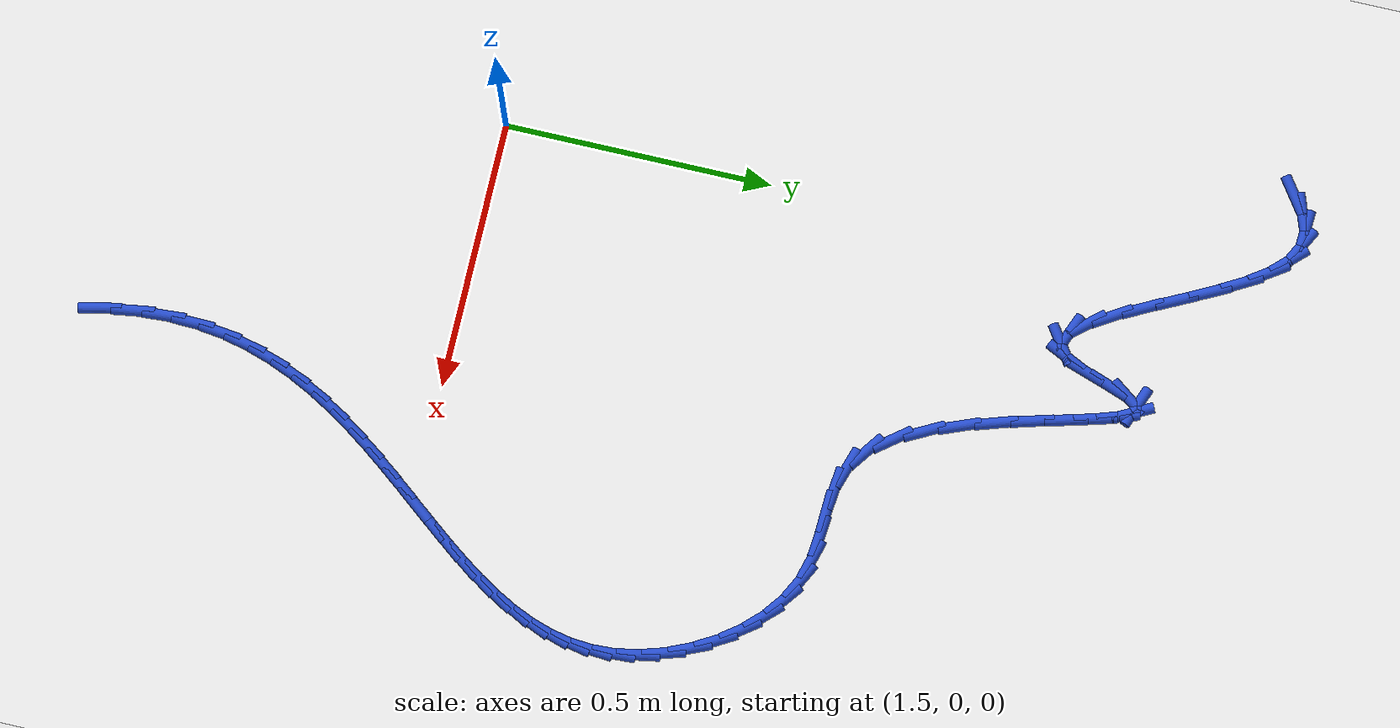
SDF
<sdf version="1.6">
 <world name="default">
  <model name="ground_plane">
   <static>1</static>
   <link name="link">
    <collision name="collision">
     <geometry><plane><normal>0 0 1</normal><size>100 100</size></plane></geometry>
     <surface><friction><ode><mu>100</mu><mu2>50</mu2></ode></friction></surface>
    </collision>
    <visual name="visual">
     <cast_shadows>0</cast_shadows>
     <geometry><plane><normal>0 0 1</normal><size>100 100</size></plane></geometry>
     <material>
      <script><uri>file://media/materials/scripts/gazebo.material</uri><name>Gazebo/WhiteGlow</name></script>
     </material>
    </visual>
   </link>
  </model>
  <model name="line">
   <link name="link_49">
    <pose>1.305960254640328 1.4397032660297522 0.01 0 1.57 0.6118114277231279</pose>
    <collision name="collision">
     <geometry><cylinder><radius>0.01</radius><length>0.08</length></cylinder></geometry>
    </collision>
    <visual name="visual">
     <material>
      <script><name>Gazebo/Blue</name><uri>file://media/materials/scripts/gazebo.material</uri></script>
     </material>
     <geometry><cylinder><radius>0.01</radius><length>0.08</length></cylinder></geometry>
    </visual>
   </link>
   <link name="link_50">
    <pose>1.3366207606281537 1.4612152464219388 0.01 0 1.57 0.3391835222651856</pose>
    <collision name="collision">
     <geometry><cylinder><radius>0.01</radius><length>0.08</length></cylinder></geometry>
    </collision>
    <visual name="visual">
     <material>
      <script><name>Gazebo/Blue</name><uri>file://media/materials/scripts/gazebo.material</uri></script>
     </material>
     <geometry><cylinder><radius>0.01</radius><length>0.08</length></cylinder></geometry>
    </visual>
   </link>
   <link name="link_51">
    <pose>1.3670169487333024 1.4719395839047713 0.01 0 1.57 -0.05838418707897125</pose>
    <collision name="collision">
     <geometry><cylinder><radius>0.01</radius><length>0.08</length></cylinder></geometry>
    </collision>
    <visual name="visual">
     <material>
      <script><name>Gazebo/Blue</name><uri>file://media/materials/scripts/gazebo.material</uri></script>
     </material>
     <geometry><cylinder><radius>0.01</radius><length>0.08</length></cylinder></geometry>
    </visual>
   </link>
   <link name="link_52">
    <pose>1.397233074291337 1.470173432753568 0.01 0 1.57 -0.4872475545735973</pose>
    <collision name="collision">
     <geometry><cylinder><radius>0.01</radius><length>0.08</length></cylinder></geometry>
    </collision>
    <visual name="visual">
     <material>
      <script><name>Gazebo/Blue</name><uri>file://media/materials/scripts/gazebo.material</uri></script>
     </material>
     <geometry><cylinder><radius>0.01</radius><length>0.08</length></cylinder></geometry>
    </visual>
   </link>
   <link name="link_53">
    <pose>1.4273533926378228 1.4542139472436493 0.01 0 1.57 -0.8073012380683111</pose>
    <collision name="collision">
     <geometry><cylinder><radius>0.01</radius><length>0.08</length></cylinder></geometry>
    </collision>
    <visual name="visual">
     <material>
      <script><name>Gazebo/Blue</name><uri>file://media/materials/scripts/gazebo.material</uri></script>
     </material>
     <geometry><cylinder><radius>0.01</radius><length>0.08</length></cylinder></geometry>
    </visual>
   </link>
   <link name="link_54">
    <pose>1.4574407283180275 1.4227788659387977 0.01 0 1.57 -0.9779283759990263</pose>
    <collision name="collision">
     <geometry><cylinder><radius>0.01</radius><length>0.08</length></cylinder></geometry>
    </collision>
    <visual name="visual">
     <material>
      <script><name>Gazebo/Blue</name><uri>file://media/materials/scripts/gazebo.material</uri></script>
     </material>
     <geometry><cylinder><radius>0.01</radius><length>0.08</length></cylinder></geometry>
    </visual>
   </link>
   <link name="link_55">
    <pose>1.487365526032299 1.3783614270027067 0.01 0 1.57 -1.0617486226155675</pose>
    <collision name="collision">
     <geometry><cylinder><radius>0.01</radius><length>0.08</length></cylinder></geometry>
    </collision>
    <visual name="visual">
     <material>
      <script><name>Gazebo/Blue</name><uri>file://media/materials/scripts/gazebo.material</uri></script>
     </material>
     <geometry><cylinder><radius>0.01</radius><length>0.08</length></cylinder></geometry>
    </visual>
   </link>
   <link name="link_56">
    <pose>1.5168966385264455 1.3254486345462557 0.01 0 1.57 -1.1007890962793665</pose>
    <collision name="collision">
     <geometry><cylinder><radius>0.01</radius><length>0.08</length></cylinder></geometry>
    </collision>
    <visual name="visual">
     <material>
      <script><name>Gazebo/Blue</name><uri>file://media/materials/scripts/gazebo.material</uri></script>
     </material>
     <geometry><cylinder><radius>0.01</radius><length>0.08</length></cylinder></geometry>
    </visual>
   </link>
   <link name="link_57">
    <pose>1.5458020002137172 1.2685455151722245 0.01 0 1.57 -1.1092316573219194</pose>
    <collision name="collision">
     <geometry><cylinder><radius>0.01</radius><length>0.08</length></cylinder></geometry>
    </collision>
    <visual name="visual">
     <material>
      <script><name>Gazebo/Blue</name><uri>file://media/materials/scripts/gazebo.material</uri></script>
     </material>
     <geometry><cylinder><radius>0.01</radius><length>0.08</length></cylinder></geometry>
    </visual>
   </link>
   <link name="link_58">
    <pose>1.5738495455073662 1.212157095483396 0.01 0 1.57 -1.0875156939405088</pose>
    <collision name="collision">
     <geometry><cylinder><radius>0.01</radius><length>0.08</length></cylinder></geometry>
    </collision>
    <visual name="visual">
     <material>
      <script><name>Gazebo/Blue</name><uri>file://media/materials/scripts/gazebo.material</uri></script>
     </material>
     <geometry><cylinder><radius>0.01</radius><length>0.08</length></cylinder></geometry>
    </visual>
   </link>
   <link name="link_59">
    <pose>1.6008072088206433 1.16078840208255 0.01 0 1.57 -1.021126797336684</pose>
    <collision name="collision">
     <geometry><cylinder><radius>0.01</radius><length>0.08</length></cylinder></geometry>
    </collision>
    <visual name="visual">
     <material>
      <script><name>Gazebo/Blue</name><uri>file://media/materials/scripts/gazebo.material</uri></script>
     </material>
     <geometry><cylinder><radius>0.01</radius><length>0.08</length></cylinder></geometry>
    </visual>
   </link>
   <link name="link_60">
    <pose>1.6264429245668002 1.1189444615724684 0.01 0 1.57 -0.8571966138022475</pose>
    <collision name="collision">
     <geometry><cylinder><radius>0.01</radius><length>0.08</length></cylinder></geometry>
    </collision>
    <visual name="visual">
     <material>
      <script><name>Gazebo/Blue</name><uri>file://media/materials/scripts/gazebo.material</uri></script>
     </material>
     <geometry><cylinder><radius>0.01</radius><length>0.08</length></cylinder></geometry>
    </visual>
   </link>
   <link name="link_61">
    <pose>1.6505246271590883 1.091130300555933 0.01 0 1.57 -0.39439021984326583</pose>
    <collision name="collision">
     <geometry><cylinder><radius>0.01</radius><length>0.08</length></cylinder></geometry>
    </collision>
    <visual name="visual">
     <material>
      <script><name>Gazebo/Blue</name><uri>file://media/materials/scripts/gazebo.material</uri></script>
     </material>
     <geometry><cylinder><radius>0.01</radius><length>0.08</length></cylinder></geometry>
    </visual>
   </link>
   <link name="link_62">
    <pose>1.6728202510107586 1.0818509456357248 0.01 0 1.57 0.5962247881532992</pose>
    <collision name="collision">
     <geometry><cylinder><radius>0.01</radius><length>0.08</length></cylinder></geometry>
    </collision>
    <visual name="visual">
     <material>
      <script><name>Gazebo/Blue</name><uri>file://media/materials/scripts/gazebo.material</uri></script>
     </material>
     <geometry><cylinder><radius>0.01</radius><length>0.08</length></cylinder></geometry>
    </visual>
   </link>
   <link name="link_63">
    <pose>1.6930977305350625 1.095611423414625 0.01 0 1.57 1.1229213173697732</pose>
    <collision name="collision">
     <geometry><cylinder><radius>0.01</radius><length>0.08</length></cylinder></geometry>
    </collision>
    <visual name="visual">
     <material>
      <script><name>Gazebo/Blue</name><uri>file://media/materials/scripts/gazebo.material</uri></script>
     </material>
     <geometry><cylinder><radius>0.01</radius><length>0.08</length></cylinder></geometry>
    </visual>
   </link>
   <link name="link_64">
    <pose>1.7112166948940537 1.1333249379952481 0.01 0 1.57 1.244275173853015</pose>
    <collision name="collision">
     <geometry><cylinder><radius>0.01</radius><length>0.08</length></cylinder></geometry>
    </collision>
    <visual name="visual">
     <material>
      <script><name>Gazebo/Blue</name><uri>file://media/materials/scripts/gazebo.material</uri></script>
     </material>
     <geometry><cylinder><radius>0.01</radius><length>0.08</length></cylinder></geometry>
    </visual>
   </link>
   <link name="link_65">
    <pose>1.7274133615835752 1.1811531567971165 0.01 0 1.57 1.2232059594716094</pose>
    <collision name="collision">
     <geometry><cylinder><radius>0.01</radius><length>0.08</length></cylinder></geometry>
    </collision>
    <visual name="visual">
     <material>
      <script><name>Gazebo/Blue</name><uri>file://media/materials/scripts/gazebo.material</uri></script>
     </material>
     <geometry><cylinder><radius>0.01</radius><length>0.08</length></cylinder></geometry>
    </visual>
   </link>
   <link name="link_66">
    <pose>1.7420206127494138 1.2214712461676438 0.01 0 1.57 0.931476409981154</pose>
    <collision name="collision">
     <geometry><cylinder><radius>0.01</radius><length>0.08</length></cylinder></geometry>
    </collision>
    <visual name="visual">
     <material>
      <script><name>Gazebo/Blue</name><uri>file://media/materials/scripts/gazebo.material</uri></script>
     </material>
     <geometry><cylinder><radius>0.01</radius><length>0.08</length></cylinder></geometry>
    </visual>
   </link>
   <link name="link_67">
    <pose>1.7554037255991188 1.2394717060804001 0.01 0 1.57 -0.37375416897787334</pose>
    <collision name="collision">
     <geometry><cylinder><radius>0.01</radius><length>0.08</length></cylinder></geometry>
    </collision>
    <visual name="visual">
     <material>
      <script><name>Gazebo/Blue</name><uri>file://media/materials/scripts/gazebo.material</uri></script>
     </material>
     <geometry><cylinder><radius>0.01</radius><length>0.08</length></cylinder></geometry>
    </visual>
   </link>
   <link name="link_68">
    <pose>1.7680906688736167 1.2344960338680837 0.01 0 1.57 -1.091372390550766</pose>
    <collision name="collision">
     <geometry><cylinder><radius>0.01</radius><length>0.08</length></cylinder></geometry>
    </collision>
    <visual name="visual">
     <material>
      <script><name>Gazebo/Blue</name><uri>file://media/materials/scripts/gazebo.material</uri></script>
     </material>
     <geometry><cylinder><radius>0.01</radius><length>0.08</length></cylinder></geometry>
    </visual>
   </link>
   <link name="link_69">
    <pose>1.7806603743307834 1.2103178910781083 0.01 0 1.57 -1.2529226455767757</pose>
    <collision name="collision">
     <geometry><cylinder><radius>0.01</radius><length>0.08</length></cylinder></geometry>
    </collision>
    <visual name="visual">
     <material>
      <script><name>Gazebo/Blue</name><uri>file://media/materials/scripts/gazebo.material</uri></script>
     </material>
     <geometry><cylinder><radius>0.01</radius><length>0.08</length></cylinder></geometry>
    </visual>
   </link>
   <link name="link_70">
    <pose>1.7936917914508976 1.1707124805438458 0.01 0 1.57 -1.3028605284781158</pose>
    <collision name="collision">
     <geometry><cylinder><radius>0.01</radius><length>0.08</length></cylinder></geometry>
    </collision>
    <visual name="visual">
     <material>
      <script><name>Gazebo/Blue</name><uri>file://media/materials/scripts/gazebo.material</uri></script>
     </material>
     <geometry><cylinder><radius>0.01</radius><length>0.08</length></cylinder></geometry>
    </visual>
   </link>
   <link name="link_71">
    <pose>1.807763869714237 1.1194550050986676 0.01 0 1.57 -1.311417390988707</pose>
    <collision name="collision">
     <geometry><cylinder><radius>0.01</radius><length>0.08</length></cylinder></geometry>
    </collision>
    <visual name="visual">
     <material>
      <script><name>Gazebo/Blue</name><uri>file://media/materials/scripts/gazebo.material</uri></script>
     </material>
     <geometry><cylinder><radius>0.01</radius><length>0.08</length></cylinder></geometry>
    </visual>
   </link>
   <link name="link_72">
    <pose>1.8234555586010777 1.0603206675759427 0.01 0 1.57 -1.295088983080152</pose>
    <collision name="collision">
     <geometry><cylinder><radius>0.01</radius><length>0.08</length></cylinder></geometry>
    </collision>
    <visual name="visual">
     <material>
      <script><name>Gazebo/Blue</name><uri>file://media/materials/scripts/gazebo.material</uri></script>
     </material>
     <geometry><cylinder><radius>0.01</radius><length>0.08</length></cylinder></geometry>
    </visual>
   </link>
   <link name="link_73">
    <pose>1.8413458075916975 0.9970846708090432 0.01 0 1.57 -1.256422689430696</pose>
    <collision name="collision">
     <geometry><cylinder><radius>0.01</radius><length>0.08</length></cylinder></geometry>
    </collision>
    <visual name="visual">
     <material>
      <script><name>Gazebo/Blue</name><uri>file://media/materials/scripts/gazebo.material</uri></script>
     </material>
     <geometry><cylinder><radius>0.01</radius><length>0.08</length></cylinder></geometry>
    </visual>
   </link>
   <link name="link_74">
    <pose>1.8620135661663737 0.9335222176313391 0.01 0 1.57 -1.1905949414682713</pose>
    <collision name="collision">
     <geometry><cylinder><radius>0.01</radius><length>0.08</length></cylinder></geometry>
    </collision>
    <visual name="visual">
     <material>
      <script><name>Gazebo/Blue</name><uri>file://media/materials/scripts/gazebo.material</uri></script>
     </material>
     <geometry><cylinder><radius>0.01</radius><length>0.08</length></cylinder></geometry>
    </visual>
   </link>
   <link name="link_75">
    <pose>1.8860377838053832 0.8734085108762015 0.01 0 1.57 -1.0845003230859669</pose>
    <collision name="collision">
     <geometry><cylinder><radius>0.01</radius><length>0.08</length></cylinder></geometry>
    </collision>
    <visual name="visual">
     <material>
      <script><name>Gazebo/Blue</name><uri>file://media/materials/scripts/gazebo.material</uri></script>
     </material>
     <geometry><cylinder><radius>0.01</radius><length>0.08</length></cylinder></geometry>
    </visual>
   </link>
   <link name="link_76">
    <pose>1.9139974099890043 0.8205187533770014 0.01 0 1.57 -0.9113555503702386</pose>
    <collision name="collision">
     <geometry><cylinder><radius>0.01</radius><length>0.08</length></cylinder></geometry>
    </collision>
    <visual name="visual">
     <material>
      <script><name>Gazebo/Blue</name><uri>file://media/materials/scripts/gazebo.material</uri></script>
     </material>
     <geometry><cylinder><radius>0.01</radius><length>0.08</length></cylinder></geometry>
    </visual>
   </link>
   <link name="link_77">
    <pose>1.9464713941975127 0.7786281479671091 0.01 0 1.57 -0.6290559682548628</pose>
    <collision name="collision">
     <geometry><cylinder><radius>0.01</radius><length>0.08</length></cylinder></geometry>
    </collision>
    <visual name="visual">
     <material>
      <script><name>Gazebo/Blue</name><uri>file://media/materials/scripts/gazebo.material</uri></script>
     </material>
     <geometry><cylinder><radius>0.01</radius><length>0.08</length></cylinder></geometry>
    </visual>
   </link>
   <link name="link_78">
    <pose>1.9839927782287263 0.7513249685839815 0.01 0 1.57 -0.3117280516410252</pose>
    <collision name="collision">
     <geometry><cylinder><radius>0.01</radius><length>0.08</length></cylinder></geometry>
    </collision>
    <visual name="visual">
     <material>
      <script><name>Gazebo/Blue</name><uri>file://media/materials/scripts/gazebo.material</uri></script>
     </material>
     <geometry><cylinder><radius>0.01</radius><length>0.08</length></cylinder></geometry>
    </visual>
   </link>
   <link name="link_79">
    <pose>2.026011010945434 0.7377852683752131 0.01 0 1.57 -0.112659842152981</pose>
    <collision name="collision">
     <geometry><cylinder><radius>0.01</radius><length>0.08</length></cylinder></geometry>
    </collision>
    <visual name="visual">
     <material>
      <script><name>Gazebo/Blue</name><uri>file://media/materials/scripts/gazebo.material</uri></script>
     </material>
     <geometry><cylinder><radius>0.01</radius><length>0.08</length></cylinder></geometry>
    </visual>
   </link>
   <link name="link_80">
    <pose>2.0708763229668716 0.7327092558884445 0.01 0 1.57 -0.045862318755296644</pose>
    <collision name="collision">
     <geometry><cylinder><radius>0.01</radius><length>0.08</length></cylinder></geometry>
    </collision>
    <visual name="visual">
     <material>
      <script><name>Gazebo/Blue</name><uri>file://media/materials/scripts/gazebo.material</uri></script>
     </material>
     <geometry><cylinder><radius>0.01</radius><length>0.08</length></cylinder></geometry>
    </visual>
   </link>
   <link name="link_81">
    <pose>2.116889911967308 0.73059748519574 0.01 0 1.57 -0.10186053595120187</pose>
    <collision name="collision">
     <geometry><cylinder><radius>0.01</radius><length>0.08</length></cylinder></geometry>
    </collision>
    <visual name="visual">
     <material>
      <script><name>Gazebo/Blue</name><uri>file://media/materials/scripts/gazebo.material</uri></script>
     </material>
     <geometry><cylinder><radius>0.01</radius><length>0.08</length></cylinder></geometry>
    </visual>
   </link>
   <link name="link_82">
    <pose>2.1623529756210096 0.7259505103691627 0.01 0 1.57 -0.27729738008622196</pose>
    <collision name="collision">
     <geometry><cylinder><radius>0.01</radius><length>0.08</length></cylinder></geometry>
    </collision>
    <visual name="visual">
     <material>
      <script><name>Gazebo/Blue</name><uri>file://media/materials/scripts/gazebo.material</uri></script>
     </material>
     <geometry><cylinder><radius>0.01</radius><length>0.08</length></cylinder></geometry>
    </visual>
   </link>
   <link name="link_83">
    <pose>2.2056349764886147 0.7136311329032565 0.01 0 1.57 -0.4833220088425829</pose>
    <collision name="collision">
     <geometry><cylinder><radius>0.01</radius><length>0.08</length></cylinder></geometry>
    </collision>
    <visual name="visual">
     <material>
      <script><name>Gazebo/Blue</name><uri>file://media/materials/scripts/gazebo.material</uri></script>
     </material>
     <geometry><cylinder><radius>0.01</radius><length>0.08</length></cylinder></geometry>
    </visual>
   </link>
   <link name="link_84">
    <pose>2.2458622036798586 0.6925182521907718 0.01 0 1.57 -0.6598079266038612</pose>
    <collision name="collision">
     <geometry><cylinder><radius>0.01</radius><length>0.08</length></cylinder></geometry>
    </collision>
    <visual name="visual">
     <material>
      <script><name>Gazebo/Blue</name><uri>file://media/materials/scripts/gazebo.material</uri></script>
     </material>
     <geometry><cylinder><radius>0.01</radius><length>0.08</length></cylinder></geometry>
    </visual>
   </link>
   <link name="link_85">
    <pose>2.2826323180959727 0.663992100675408 0.01 0 1.57 -0.8091715459402741</pose>
    <collision name="collision">
     <geometry><cylinder><radius>0.01</radius><length>0.08</length></cylinder></geometry>
    </collision>
    <visual name="visual">
     <material>
      <script><name>Gazebo/Blue</name><uri>file://media/materials/scripts/gazebo.material</uri></script>
     </material>
     <geometry><cylinder><radius>0.01</radius><length>0.08</length></cylinder></geometry>
    </visual>
   </link>
   <link name="link_86">
    <pose>2.3155501111633088 0.6294707489118532 0.01 0 1.57 -0.9380800347323993</pose>
    <collision name="collision">
     <geometry><cylinder><radius>0.01</radius><length>0.08</length></cylinder></geometry>
    </collision>
    <visual name="visual">
     <material>
      <script><name>Gazebo/Blue</name><uri>file://media/materials/scripts/gazebo.material</uri></script>
     </material>
     <geometry><cylinder><radius>0.01</radius><length>0.08</length></cylinder></geometry>
    </visual>
   </link>
   <link name="link_87">
    <pose>2.3442203743082217 0.5903722674547941 0.01 0 1.57 -1.0537871378796086</pose>
    <collision name="collision">
     <geometry><cylinder><radius>0.01</radius><length>0.08</length></cylinder></geometry>
    </collision>
    <visual name="visual">
     <material>
      <script><name>Gazebo/Blue</name><uri>file://media/materials/scripts/gazebo.material</uri></script>
     </material>
     <geometry><cylinder><radius>0.01</radius><length>0.08</length></cylinder></geometry>
    </visual>
   </link>
   <link name="link_88">
    <pose>2.368247898957064 0.5481147268589183 0.01 0 1.57 -1.1633523225118496</pose>
    <collision name="collision">
     <geometry><cylinder><radius>0.01</radius><length>0.08</length></cylinder></geometry>
    </collision>
    <visual name="visual">
     <material>
      <script><name>Gazebo/Blue</name><uri>file://media/materials/scripts/gazebo.material</uri></script>
     </material>
     <geometry><cylinder><radius>0.01</radius><length>0.08</length></cylinder></geometry>
    </visual>
   </link>
   <link name="link_89">
    <pose>2.387237476536189 0.5041161976789128 0.01 0 1.57 -1.2739666451792522</pose>
    <collision name="collision">
     <geometry><cylinder><radius>0.01</radius><length>0.08</length></cylinder></geometry>
    </collision>
    <visual name="visual">
     <material>
      <script><name>Gazebo/Blue</name><uri>file://media/materials/scripts/gazebo.material</uri></script>
     </material>
     <geometry><cylinder><radius>0.01</radius><length>0.08</length></cylinder></geometry>
    </visual>
   </link>
   <link name="link_90">
    <pose>2.4007938984719517 0.45979475046946533 0.01 0 1.57 -1.3934758003918752</pose>
    <collision name="collision">
     <geometry><cylinder><radius>0.01</radius><length>0.08</length></cylinder></geometry>
    </collision>
    <visual name="visual">
     <material>
      <script><name>Gazebo/Blue</name><uri>file://media/materials/scripts/gazebo.material</uri></script>
     </material>
     <geometry><cylinder><radius>0.01</radius><length>0.08</length></cylinder></geometry>
    </visual>
   </link>
   <link name="link_91">
    <pose>2.4085490427150753 0.4165189213472456 0.01 0 1.57 -1.5218140112653373</pose>
    <collision name="collision">
     <geometry><cylinder><radius>0.01</radius><length>0.08</length></cylinder></geometry>
    </collision>
    <visual name="visual">
     <material>
      <script><name>Gazebo/Blue</name><uri>file://media/materials/scripts/gazebo.material</uri></script>
     </material>
     <geometry><cylinder><radius>0.01</radius><length>0.08</length></cylinder></geometry>
    </visual>
   </link>
   <link name="link_92">
    <pose>2.4105932441856566 0.3748188439811388 0.01 0 1.57 1.4916891072299368</pose>
    <collision name="collision">
     <geometry><cylinder><radius>0.01</radius><length>0.08</length></cylinder></geometry>
    </collision>
    <visual name="visual">
     <material>
      <script><name>Gazebo/Blue</name><uri>file://media/materials/scripts/gazebo.material</uri></script>
     </material>
     <geometry><cylinder><radius>0.01</radius><length>0.08</length></cylinder></geometry>
    </visual>
   </link>
   <link name="link_93">
    <pose>2.407399092327051 0.3345256046934314 0.01 0 1.57 1.3701329676082974</pose>
    <collision name="collision">
     <geometry><cylinder><radius>0.01</radius><length>0.08</length></cylinder></geometry>
    </collision>
    <visual name="visual">
     <material>
      <script><name>Gazebo/Blue</name><uri>file://media/materials/scripts/gazebo.material</uri></script>
     </material>
     <geometry><cylinder><radius>0.01</radius><length>0.08</length></cylinder></geometry>
    </visual>
   </link>
   <link name="link_94">
    <pose>2.399450864575113 0.29544891540885587 0.01 0 1.57 1.2600950684789651</pose>
    <collision name="collision">
     <geometry><cylinder><radius>0.01</radius><length>0.08</length></cylinder></geometry>
    </collision>
    <visual name="visual">
     <material>
      <script><name>Gazebo/Blue</name><uri>file://media/materials/scripts/gazebo.material</uri></script>
     </material>
     <geometry><cylinder><radius>0.01</radius><length>0.08</length></cylinder></geometry>
    </visual>
   </link>
   <link name="link_95">
    <pose>2.387232838365701 0.257398488052145 0.01 0 1.57 1.1646680565555068</pose>
    <collision name="collision">
     <geometry><cylinder><radius>0.01</radius><length>0.08</length></cylinder></geometry>
    </collision>
    <visual name="visual">
     <material>
      <script><name>Gazebo/Blue</name><uri>file://media/materials/scripts/gazebo.material</uri></script>
     </material>
     <geometry><cylinder><radius>0.01</radius><length>0.08</length></cylinder></geometry>
    </visual>
   </link>
   <link name="link_96">
    <pose>2.3712292911346693 0.2201840345480317 0.01 0 1.57 1.0850756854784522</pose>
    <collision name="collision">
     <geometry><cylinder><radius>0.01</radius><length>0.08</length></cylinder></geometry>
    </collision>
    <visual name="visual">
     <material>
      <script><name>Gazebo/Blue</name><uri>file://media/materials/scripts/gazebo.material</uri></script>
     </material>
     <geometry><cylinder><radius>0.01</radius><length>0.08</length></cylinder></geometry>
    </visual>
   </link>
   <link name="link_97">
    <pose>2.3519245003178764 0.1836152668212478 0.01 0 1.57 1.0211896421236089</pose>
    <collision name="collision">
     <geometry><cylinder><radius>0.01</radius><length>0.08</length></cylinder></geometry>
    </collision>
    <visual name="visual">
     <material>
      <script><name>Gazebo/Blue</name><uri>file://media/materials/scripts/gazebo.material</uri></script>
     </material>
     <geometry><cylinder><radius>0.01</radius><length>0.08</length></cylinder></geometry>
    </visual>
   </link>
   <link name="link_98">
    <pose>2.3298027433511757 0.1475018967965263 0.01 0 1.57 0.97214038950909</pose>
    <collision name="collision">
     <geometry><cylinder><radius>0.01</radius><length>0.08</length></cylinder></geometry>
    </collision>
    <visual name="visual">
     <material>
      <script><name>Gazebo/Blue</name><uri>file://media/materials/scripts/gazebo.material</uri></script>
     </material>
     <geometry><cylinder><radius>0.01</radius><length>0.08</length></cylinder></geometry>
    </visual>
   </link>
   <link name="link_99">
    <pose>2.305348297670426 0.11165363639859982 0.01 0 1.57 0.9367943314027336</pose>
    <collision name="collision">
     <geometry><cylinder><radius>0.01</radius><length>0.08</length></cylinder></geometry>
    </collision>
    <visual name="visual">
     <material>
      <script><name>Gazebo/Blue</name><uri>file://media/materials/scripts/gazebo.material</uri></script>
     </material>
     <geometry><cylinder><radius>0.01</radius><length>0.08</length></cylinder></geometry>
    </visual>
   </link>
   <link name="link_100">
    <pose>2.2790454407114824 0.07588019755220105 0.01 0 1.57 0.914048763772656</pose>
    <collision name="collision">
     <geometry><cylinder><radius>0.01</radius><length>0.08</length></cylinder></geometry>
    </collision>
    <visual name="visual">
     <material>
      <script><name>Gazebo/Blue</name><uri>file://media/materials/scripts/gazebo.material</uri></script>
     </material>
     <geometry><cylinder><radius>0.01</radius><length>0.08</length></cylinder></geometry>
    </visual>
   </link>
   <link name="link_101">
    <pose>2.2513784499102028 0.03999129218206249 0.01 0 1.57 0.9029816834438659</pose>
    <collision name="collision">
     <geometry><cylinder><radius>0.01</radius><length>0.08</length></cylinder></geometry>
    </collision>
    <visual name="visual">
     <material>
      <script><name>Gazebo/Blue</name><uri>file://media/materials/scripts/gazebo.material</uri></script>
     </material>
     <geometry><cylinder><radius>0.01</radius><length>0.08</length></cylinder></geometry>
    </visual>
   </link>
   <link name="link_102">
    <pose>2.2228316027024424 0.003796632212916831 0.01 0 1.57 0.902908621399613</pose>
    <collision name="collision">
     <geometry><cylinder><radius>0.01</radius><length>0.08</length></cylinder></geometry>
    </collision>
    <visual name="visual">
     <material>
      <script><name>Gazebo/Blue</name><uri>file://media/materials/scripts/gazebo.material</uri></script>
     </material>
     <geometry><cylinder><radius>0.01</radius><length>0.08</length></cylinder></geometry>
    </visual>
   </link>
   <link name="link_103">
    <pose>2.193889176524057 -0.03289407043050337 0.01 0 1.57 0.9133857487824062</pose>
    <collision name="collision">
     <geometry><cylinder><radius>0.01</radius><length>0.08</length></cylinder></geometry>
    </collision>
    <visual name="visual">
     <material>
      <script><name>Gazebo/Blue</name><uri>file://media/materials/scripts/gazebo.material</uri></script>
     </material>
     <geometry><cylinder><radius>0.01</radius><length>0.08</length></cylinder></geometry>
    </visual>
   </link>
   <link name="link_104">
    <pose>2.165035448810904 -0.07027110382346541 0.01 0 1.57 0.9341813909929388</pose>
    <collision name="collision">
     <geometry><cylinder><radius>0.01</radius><length>0.08</length></cylinder></geometry>
    </collision>
    <visual name="visual">
     <material>
      <script><name>Gazebo/Blue</name><uri>file://media/materials/scripts/gazebo.material</uri></script>
     </material>
     <geometry><cylinder><radius>0.01</radius><length>0.08</length></cylinder></geometry>
    </visual>
   </link>
   <link name="link_105">
    <pose>2.13675469699884 -0.10852475604123679 0.01 0 1.57 0.9652246218114404</pose>
    <collision name="collision">
     <geometry><cylinder><radius>0.01</radius><length>0.08</length></cylinder></geometry>
    </collision>
    <visual name="visual">
     <material>
      <script><name>Gazebo/Blue</name><uri>file://media/materials/scripts/gazebo.material</uri></script>
     </material>
     <geometry><cylinder><radius>0.01</radius><length>0.08</length></cylinder></geometry>
    </visual>
   </link>
   <link name="link_106">
    <pose>2.1095311985237206 -0.14784531515908483 0.01 0 1.57 1.0065308677551448</pose>
    <collision name="collision">
     <geometry><cylinder><radius>0.01</radius><length>0.08</length></cylinder></geometry>
    </collision>
    <visual name="visual">
     <material>
      <script><name>Gazebo/Blue</name><uri>file://media/materials/scripts/gazebo.material</uri></script>
     </material>
     <geometry><cylinder><radius>0.01</radius><length>0.08</length></cylinder></geometry>
    </visual>
   </link>
   <link name="link_107">
    <pose>2.0838492308214027 -0.18842306925227695 0.01 0 1.57 1.0581002870577627</pose>
    <collision name="collision">
     <geometry><cylinder><radius>0.01</radius><length>0.08</length></cylinder></geometry>
    </collision>
    <visual name="visual">
     <material>
      <script><name>Gazebo/Blue</name><uri>file://media/materials/scripts/gazebo.material</uri></script>
     </material>
     <geometry><cylinder><radius>0.01</radius><length>0.08</length></cylinder></geometry>
    </visual>
   </link>
   <link name="link_108">
    <pose>2.060193071327742 -0.2304483063960805 0.01 0 1.57 1.1197859555418557</pose>
    <collision name="collision">
     <geometry><cylinder><radius>0.01</radius><length>0.08</length></cylinder></geometry>
    </collision>
    <visual name="visual">
     <material>
      <script><name>Gazebo/Blue</name><uri>file://media/materials/scripts/gazebo.material</uri></script>
     </material>
     <geometry><cylinder><radius>0.01</radius><length>0.08</length></cylinder></geometry>
    </visual>
   </link>
   <link name="link_109">
    <pose>2.0390469974785956 -0.2741113146657629 0.01 0 1.57 1.1911376221737273</pose>
    <collision name="collision">
     <geometry><cylinder><radius>0.01</radius><length>0.08</length></cylinder></geometry>
    </collision>
    <visual name="visual">
     <material>
      <script><name>Gazebo/Blue</name><uri>file://media/materials/scripts/gazebo.material</uri></script>
     </material>
     <geometry><cylinder><radius>0.01</radius><length>0.08</length></cylinder></geometry>
    </visual>
   </link>
   <link name="link_110">
    <pose>2.0208952867098193 -0.3196023821365915 0.01 0 1.57 1.2712442552140235</pose>
    <collision name="collision">
     <geometry><cylinder><radius>0.01</radius><length>0.08</length></cylinder></geometry>
    </collision>
    <visual name="visual">
     <material>
      <script><name>Gazebo/Blue</name><uri>file://media/materials/scripts/gazebo.material</uri></script>
     </material>
     <geometry><cylinder><radius>0.01</radius><length>0.08</length></cylinder></geometry>
    </visual>
   </link>
   <link name="link_111">
    <pose>2.0062222164572705 -0.3671117968838338 0.01 0 1.57 1.3586208735131837</pose>
    <collision name="collision">
     <geometry><cylinder><radius>0.01</radius><length>0.08</length></cylinder></geometry>
    </collision>
    <visual name="visual">
     <material>
      <script><name>Gazebo/Blue</name><uri>file://media/materials/scripts/gazebo.material</uri></script>
     </material>
     <geometry><cylinder><radius>0.01</radius><length>0.08</length></cylinder></geometry>
    </visual>
   </link>
   <link name="link_112">
    <pose>1.9955120641568045 -0.416829846982757 0.01 0 1.57 1.4511986786725957</pose>
    <collision name="collision">
     <geometry><cylinder><radius>0.01</radius><length>0.08</length></cylinder></geometry>
    </collision>
    <visual name="visual">
     <material>
      <script><name>Gazebo/Blue</name><uri>file://media/materials/scripts/gazebo.material</uri></script>
     </material>
     <geometry><cylinder><radius>0.01</radius><length>0.08</length></cylinder></geometry>
    </visual>
   </link>
   <link name="link_113">
    <pose>1.9892491072442777 -0.4689468205086286 0.01 0 1.57 1.5464623092174614</pose>
    <collision name="collision">
     <geometry><cylinder><radius>0.01</radius><length>0.08</length></cylinder></geometry>
    </collision>
    <visual name="visual">
     <material>
      <script><name>Gazebo/Blue</name><uri>file://media/materials/scripts/gazebo.material</uri></script>
     </material>
     <geometry><cylinder><radius>0.01</radius><length>0.08</length></cylinder></geometry>
    </visual>
   </link>
   <link name="link_114">
    <pose>1.987917623155547 -0.5236530055367159 0.01 0 1.57 -1.5002368392714283</pose>
    <collision name="collision">
     <geometry><cylinder><radius>0.01</radius><length>0.08</length></cylinder></geometry>
    </collision>
    <visual name="visual">
     <material>
      <script><name>Gazebo/Blue</name><uri>file://media/materials/scripts/gazebo.material</uri></script>
     </material>
     <geometry><cylinder><radius>0.01</radius><length>0.08</length></cylinder></geometry>
    </visual>
   </link>
   <link name="link_115">
    <pose>1.9919791159661608 -0.5811187054182136 0.01 0 1.57 -1.4190898992213228</pose>
    <collision name="collision">
     <geometry><cylinder><radius>0.01</radius><length>0.08</length></cylinder></geometry>
    </collision>
    <visual name="visual">
     <material>
      <script><name>Gazebo/Blue</name><uri>file://media/materials/scripts/gazebo.material</uri></script>
     </material>
     <geometry><cylinder><radius>0.01</radius><length>0.08</length></cylinder></geometry>
    </visual>
   </link>
   <link name="link_116">
    <pose>2.0011066733694007 -0.6408223500328124 0.01 0 1.57 -1.361020812160773</pose>
    <collision name="collision">
     <geometry><cylinder><radius>0.01</radius><length>0.08</length></cylinder></geometry>
    </collision>
    <visual name="visual">
     <material>
      <script><name>Gazebo/Blue</name><uri>file://media/materials/scripts/gazebo.material</uri></script>
     </material>
     <geometry><cylinder><radius>0.01</radius><length>0.08</length></cylinder></geometry>
    </visual>
   </link>
  </model>
 </world>
</sdf>
